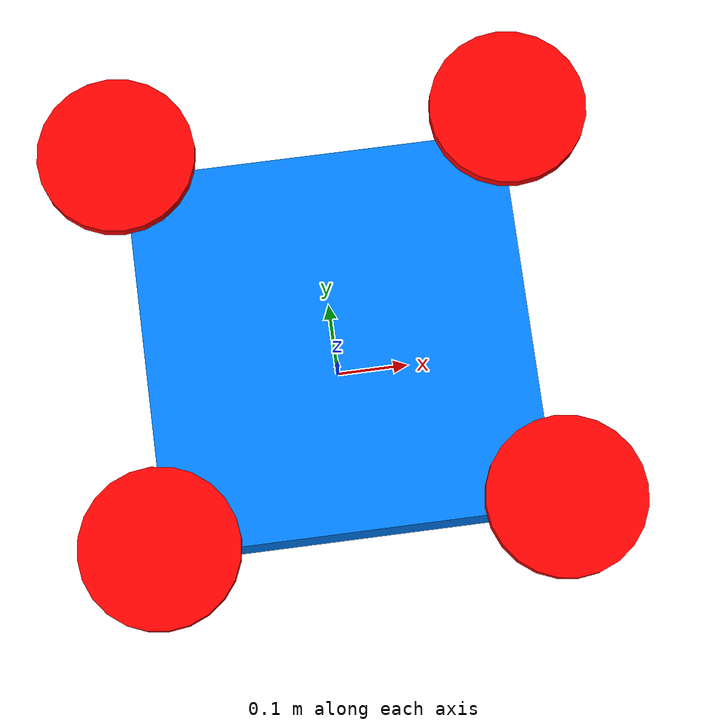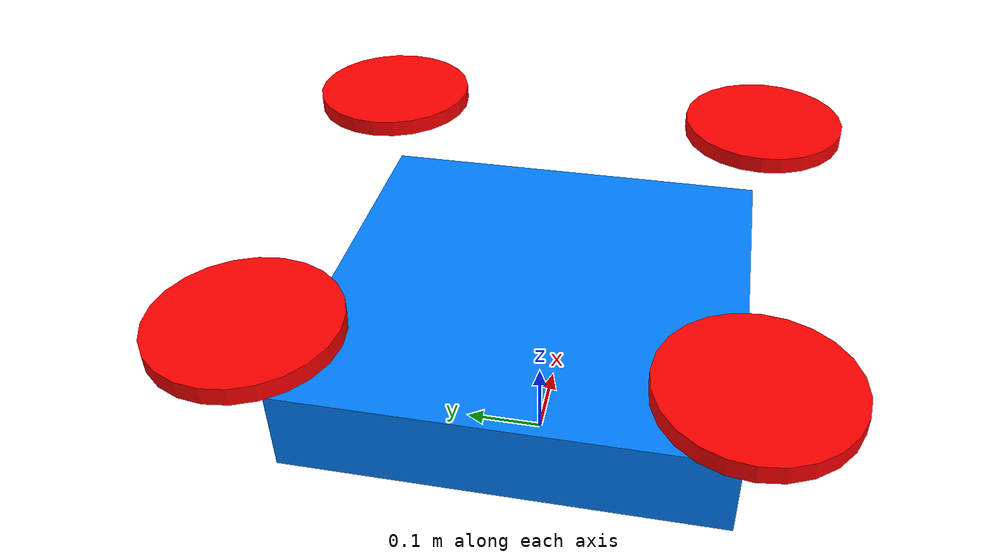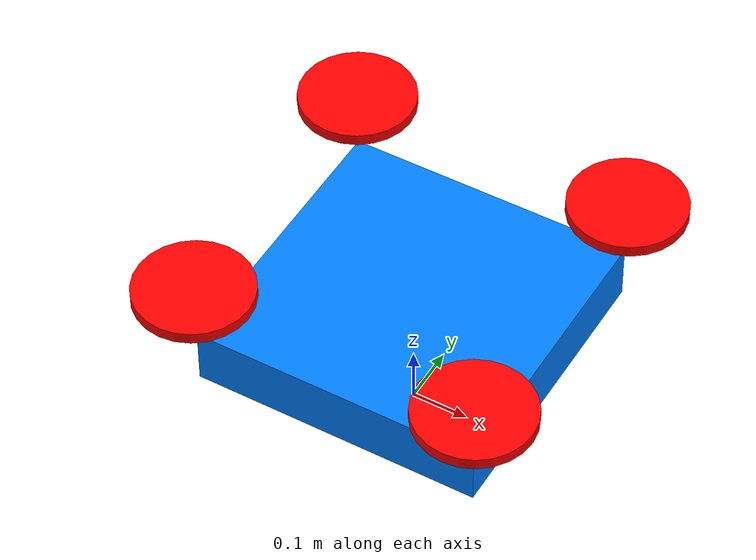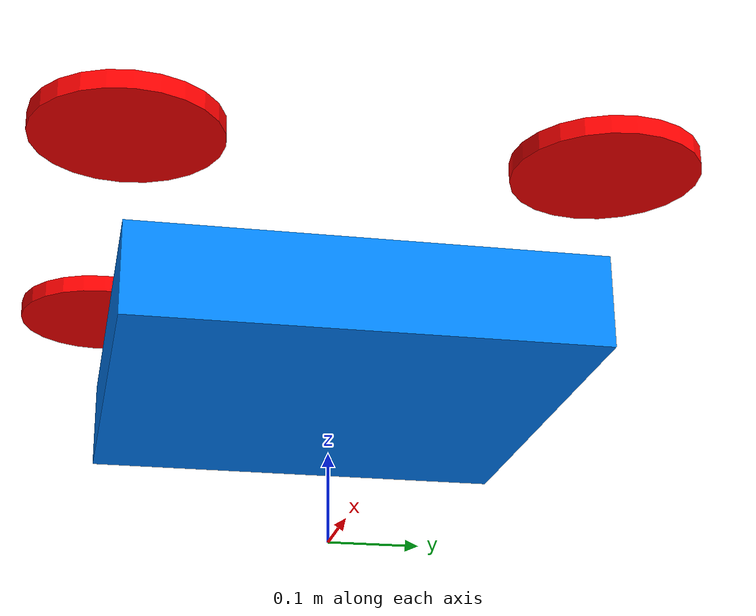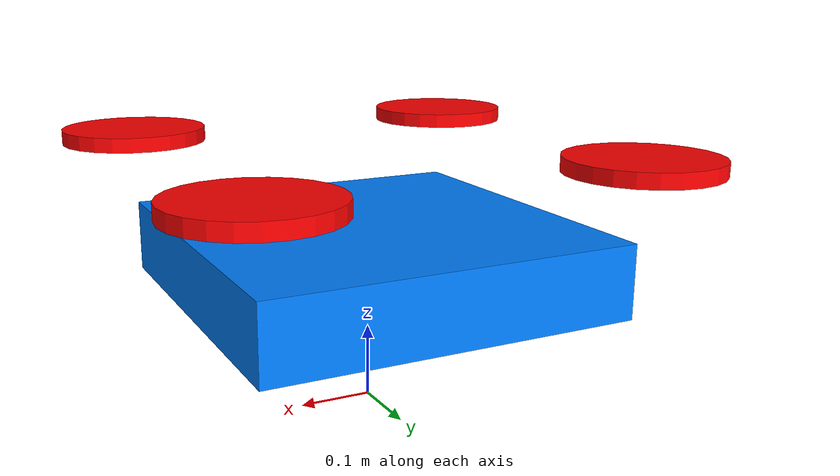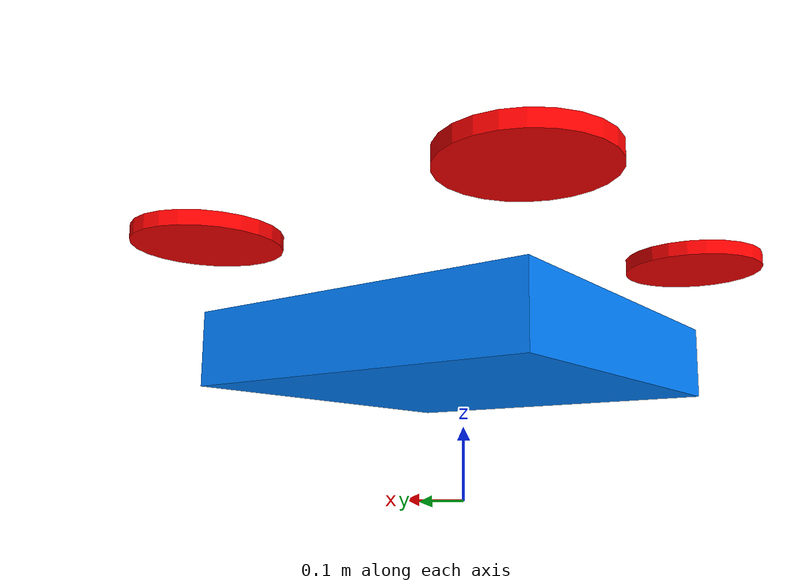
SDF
<?xml version="1.0" ?>
<sdf version="1.6">
  <model name="fanet_drone">
    <pose>0 0 0.2 0 0 0</pose>
    <link name="base_link">
      <collision name="collision">
        <geometry>
          <box>
            <size>0.5 0.5 0.1</size>
          </box>
        </geometry>
      </collision>
      <visual name="visual">
        <geometry>
          <box>
            <size>0.5 0.5 0.1</size>
          </box>
        </geometry>
        <material>
          <ambient>0.0 0.5 1.0 1</ambient>
          <diffuse>0.0 0.5 1.0 1</diffuse>
        </material>
      </visual>
      <inertial>
        <mass>1.5</mass>
        <inertia>
          <ixx>0.1</ixx>
          <iyy>0.1</iyy>
          <izz>0.1</izz>
        </inertia>
      </inertial>
    </link>

    <!-- 프로펠러들 -->
    <link name="rotor_0">
      <pose>0.25 0.25 0.15 0 0 0</pose>
      <visual name="visual">
        <geometry>
          <cylinder>
            <radius>0.1</radius>
            <length>0.02</length>
          </cylinder>
        </geometry>
        <material>
          <ambient>1 0 0 1</ambient>
        </material>
      </visual>
    </link>

    <link name="rotor_1">
      <pose>-0.25 0.25 0.15 0 0 0</pose>
      <visual name="visual">
        <geometry>
          <cylinder>
            <radius>0.1</radius>
            <length>0.02</length>
          </cylinder>
        </geometry>
        <material>
          <ambient>1 0 0 1</ambient>
        </material>
      </visual>
    </link>

    <link name="rotor_2">
      <pose>-0.25 -0.25 0.15 0 0 0</pose>
      <visual name="visual">
        <geometry>
          <cylinder>
            <radius>0.1</radius>
            <length>0.02</length>
          </cylinder>
        </geometry>
        <material>
          <ambient>1 0 0 1</ambient>
        </material>
      </visual>
    </link>

    <link name="rotor_3">
      <pose>0.25 -0.25 0.15 0 0 0</pose>
      <visual name="visual">
        <geometry>
          <cylinder>
            <radius>0.1</radius>
            <length>0.02</length>
          </cylinder>
        </geometry>
        <material>
          <ambient>1 0 0 1</ambient>
        </material>
      </visual>
    </link>

    <!-- 조인트들 -->
    <joint name="rotor_0_joint" type="revolute">
      <parent>base_link</parent>
      <child>rotor_0</child>
      <axis>
        <xyz>0 0 1</xyz>
      </axis>
    </joint>

    <joint name="rotor_1_joint" type="revolute">
      <parent>base_link</parent>
      <child>rotor_1</child>
      <axis>
        <xyz>0 0 1</xyz>
      </axis>
    </joint>

    <joint name="rotor_2_joint" type="revolute">
      <parent>base_link</parent>
      <child>rotor_2</child>
      <axis>
        <xyz>0 0 1</xyz>
      </axis>
    </joint>

    <joint name="rotor_3_joint" type="revolute">
      <parent>base_link</parent>
      <child>rotor_3</child>
      <axis>
        <xyz>0 0 1</xyz>
      </axis>
    </joint>
  </model>
</sdf>
